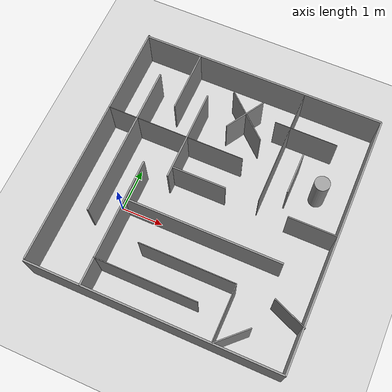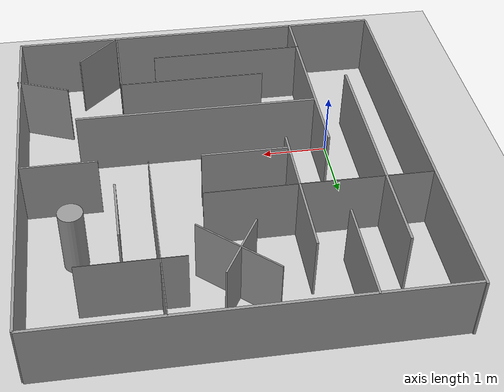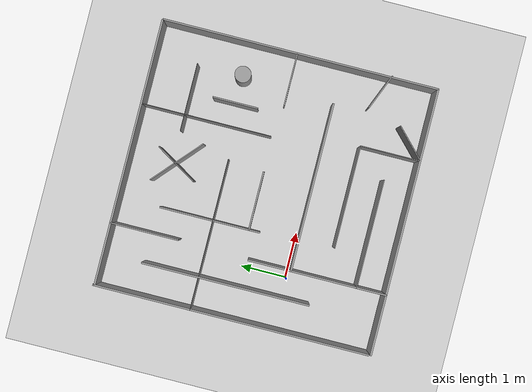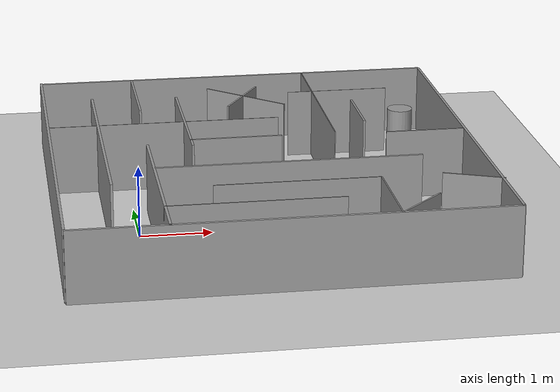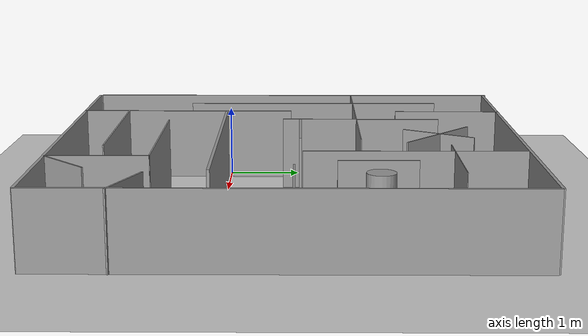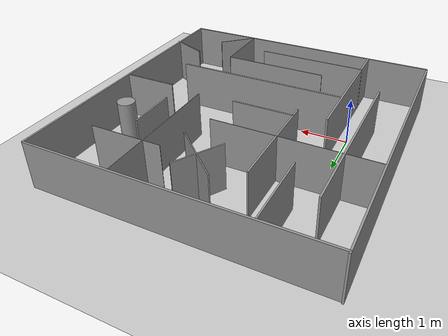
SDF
<?xml version="1.0"?>
<sdf version="1.6">
  <world name="default">

    <plugin
      filename="gz-sim-physics-system"
      name="gz::sim::systems::Physics">
    </plugin>
    <plugin
      filename="gz-sim-user-commands-system"
      name="gz::sim::systems::UserCommands">
    </plugin>
    <plugin
      filename="gz-sim-scene-broadcaster-system"
      name="gz::sim::systems::SceneBroadcaster">
    </plugin>
    <plugin
      filename="gz-sim-sensors-system"
      name="gz::sim::systems::Sensors">
      <render_engine>ogre2</render_engine>
    </plugin>
    <plugin
      filename="gz-sim-imu-system"
      name="gz::sim::systems::Imu">
    </plugin>
    <include>
      <uri>
        https://fuel.gazebosim.org/1.0/OpenRobotics/models/Ground Plane
      </uri>
    </include>

    <include>
      <uri>
        https://fuel.gazebosim.org/1.0/OpenRobotics/models/Sun
      </uri>
    </include>
    <gui fullscreen='0'>
      <camera name='user_camera'>
        <pose frame=''>0.319654 -0.235002 9.29441 0 1.5138 0.009599</pose>
        <view_controller>orbit</view_controller>
        <projection_type>perspective</projection_type>
      </camera>
      <plugin filename="MinimalScene" name="3D View">
        <gz-gui>
          <title>3D View</title>
          <property type="bool" key="showTitleBar">false</property>
          <property type="string" key="state">docked</property>
        </gz-gui>

        <engine>ogre2</engine>
        <scene>scene</scene>
        <ambient_light>0.4 0.4 0.4</ambient_light>
        <background_color>0.8 0.8 0.8</background_color>
        <camera_pose>0.319654 -0.235002 9.29441 0 1.5138 0.009599</camera_pose>
      </plugin>

      <plugin filename="VisualizeLidar" name="Visualize Lidar">
      </plugin>

      <plugin filename="EntityContextMenuPlugin" name="Entity context menu">
        <gz-gui>
          <property key="state" type="string">floating</property>
          <property key="width" type="double">5</property>
          <property key="height" type="double">5</property>
          <property key="showTitleBar" type="bool">false</property>
        </gz-gui>
      </plugin>
      <plugin filename="GzSceneManager" name="Scene Manager">
        <gz-gui>
          <property key="resizable" type="bool">false</property>
          <property key="width" type="double">5</property>
          <property key="height" type="double">5</property>
          <property key="state" type="string">floating</property>
          <property key="showTitleBar" type="bool">false</property>
        </gz-gui>
      </plugin>
      <plugin filename="InteractiveViewControl" name="Interactive view control">
        <gz-gui>
          <property key="resizable" type="bool">false</property>
          <property key="width" type="double">5</property>
          <property key="height" type="double">5</property>
          <property key="state" type="string">floating</property>
          <property key="showTitleBar" type="bool">false</property>
        </gz-gui>
      </plugin>
      <plugin filename="CameraTracking" name="Camera Tracking">
        <gz-gui>
          <property key="resizable" type="bool">false</property>
          <property key="width" type="double">5</property>
          <property key="height" type="double">5</property>
          <property key="state" type="string">floating</property>
          <property key="showTitleBar" type="bool">false</property>
        </gz-gui>
      </plugin>
      <plugin filename="MarkerManager" name="Marker manager">
        <gz-gui>
          <property key="resizable" type="bool">false</property>
          <property key="width" type="double">5</property>
          <property key="height" type="double">5</property>
          <property key="state" type="string">floating</property>
          <property key="showTitleBar" type="bool">false</property>
        </gz-gui>
      </plugin>
      <plugin filename="SelectEntities" name="Select Entities">
        <gz-gui>
          <property key="resizable" type="bool">false</property>
          <property key="width" type="double">5</property>
          <property key="height" type="double">5</property>
          <property key="state" type="string">floating</property>
          <property key="showTitleBar" type="bool">false</property>
        </gz-gui>
      </plugin>

      <plugin filename="Spawn" name="Spawn Entities">
        <gz-gui>
          <property key="resizable" type="bool">false</property>
          <property key="width" type="double">5</property>
          <property key="height" type="double">5</property>
          <property key="state" type="string">floating</property>
          <property key="showTitleBar" type="bool">false</property>
        </gz-gui>
      </plugin>

      <plugin filename="VisualizationCapabilities" name="Visualization Capabilities">
        <gz-gui>
          <property key="resizable" type="bool">false</property>
          <property key="width" type="double">5</property>
          <property key="height" type="double">5</property>
          <property key="state" type="string">floating</property>
          <property key="showTitleBar" type="bool">false</property>
        </gz-gui>
      </plugin>

      <!-- World control -->
      <plugin filename="WorldControl" name="World control">
        <gz-gui>
          <title>World control</title>
          <property type="bool" key="showTitleBar">false</property>
          <property type="bool" key="resizable">false</property>
          <property type="double" key="height">72</property>
          <property type="double" key="z">1</property>

          <property type="string" key="state">floating</property>
          <anchors target="3D View">
            <line own="left" target="left"/>
            <line own="bottom" target="bottom"/>
          </anchors>
        </gz-gui>

        <play_pause>true</play_pause>
        <step>true</step>
        <start_paused>true</start_paused>
        <use_event>true</use_event>

      </plugin>

      <!-- World statistics -->
      <plugin filename="WorldStats" name="World stats">
        <gz-gui>
          <title>World stats</title>
          <property type="bool" key="showTitleBar">false</property>
          <property type="bool" key="resizable">false</property>
          <property type="double" key="height">110</property>
          <property type="double" key="width">290</property>
          <property type="double" key="z">1</property>

          <property type="string" key="state">floating</property>
          <anchors target="3D View">
            <line own="right" target="right"/>
            <line own="bottom" target="bottom"/>
          </anchors>
        </gz-gui>

        <sim_time>true</sim_time>
        <real_time>true</real_time>
        <real_time_factor>true</real_time_factor>
        <iterations>true</iterations>
      </plugin>

      <!-- Insert simple shapes -->
      <plugin filename="Shapes" name="Shapes">
        <gz-gui>
          <property key="resizable" type="bool">false</property>
          <property key="x" type="double">0</property>
          <property key="y" type="double">0</property>
          <property key="width" type="double">250</property>
          <property key="height" type="double">50</property>
          <property key="state" type="string">floating</property>
          <property key="showTitleBar" type="bool">false</property>
          <property key="cardBackground" type="string">#666666</property>
        </gz-gui>
      </plugin>

      <!-- Insert lights -->
      <plugin filename="Lights" name="Lights">
        <gz-gui>
          <property key="resizable" type="bool">false</property>
          <property key="x" type="double">250</property>
          <property key="y" type="double">0</property>
          <property key="width" type="double">150</property>
          <property key="height" type="double">50</property>
          <property key="state" type="string">floating</property>
          <property key="showTitleBar" type="bool">false</property>
          <property key="cardBackground" type="string">#666666</property>
        </gz-gui>
      </plugin>

      <!-- Translate / rotate -->
      <plugin filename="TransformControl" name="Transform control">
        <gz-gui>
          <property key="resizable" type="bool">false</property>
          <property key="x" type="double">0</property>
          <property key="y" type="double">50</property>
          <property key="width" type="double">250</property>
          <property key="height" type="double">50</property>
          <property key="state" type="string">floating</property>
          <property key="showTitleBar" type="bool">false</property>
          <property key="cardBackground" type="string">#777777</property>
        </gz-gui>
      </plugin>

      <!-- Screenshot -->
      <plugin filename="Screenshot" name="Screenshot">
        <gz-gui>
          <property key="resizable" type="bool">false</property>
          <property key="x" type="double">250</property>
          <property key="y" type="double">50</property>
          <property key="width" type="double">50</property>
          <property key="height" type="double">50</property>
          <property key="state" type="string">floating</property>
          <property key="showTitleBar" type="bool">false</property>
          <property key="cardBackground" type="string">#777777</property>
        </gz-gui>
      </plugin>

      <!-- Copy/Paste -->
      <plugin filename="CopyPaste" name="CopyPaste">
        <gz-gui>
          <property key="resizable" type="bool">false</property>
          <property key="x" type="double">300</property>
          <property key="y" type="double">50</property>
          <property key="width" type="double">100</property>
          <property key="height" type="double">50</property>
          <property key="state" type="string">floating</property>
          <property key="showTitleBar" type="bool">false</property>
          <property key="cardBackground" type="string">#777777</property>
        </gz-gui>
      </plugin>

      <!-- Inspector -->
      <plugin filename="ComponentInspector" name="Component inspector">
        <gz-gui>
          <property type="bool" key="showTitleBar">false</property>
          <property type="string" key="state">docked</property>
        </gz-gui>
      </plugin>

      <!-- Entity tree -->
      <plugin filename="EntityTree" name="Entity tree">
        <gz-gui>
          <property type="bool" key="showTitleBar">false</property>
          <property type="string" key="state">docked</property>
        </gz-gui>
      </plugin>
    </gui>

    <physics type="ode">
      <real_time_update_rate>1000.0</real_time_update_rate>
      <max_step_size>0.001</max_step_size>
      <real_time_factor>1</real_time_factor>
      <ode>
        <solver>
          <type>quick</type>
          <iters>150</iters>
          <precon_iters>0</precon_iters>
          <sor>1.400000</sor>
          <use_dynamic_moi_rescaling>1</use_dynamic_moi_rescaling>
        </solver>
        <constraints>
          <cfm>0.00001</cfm>
          <erp>0.2</erp>
          <contact_max_correcting_vel>2000.000000</contact_max_correcting_vel>
          <contact_surface_layer>0.01000</contact_surface_layer>
        </constraints>
      </ode>
    </physics>

    <model name="custom_maze">
      <static>1</static>
      <include>
        <uri>model://custom_maze</uri>
      </include>
    </model>

  </world>
</sdf>
